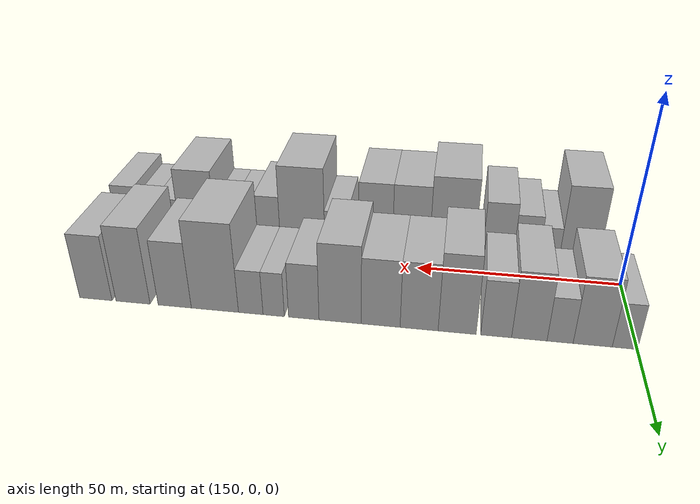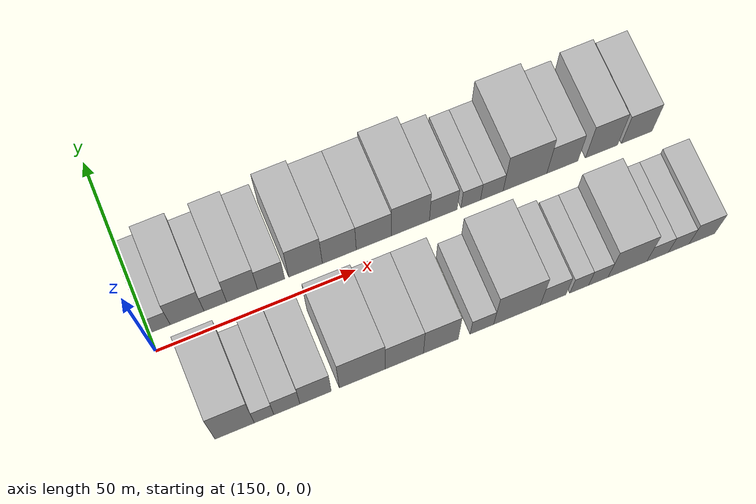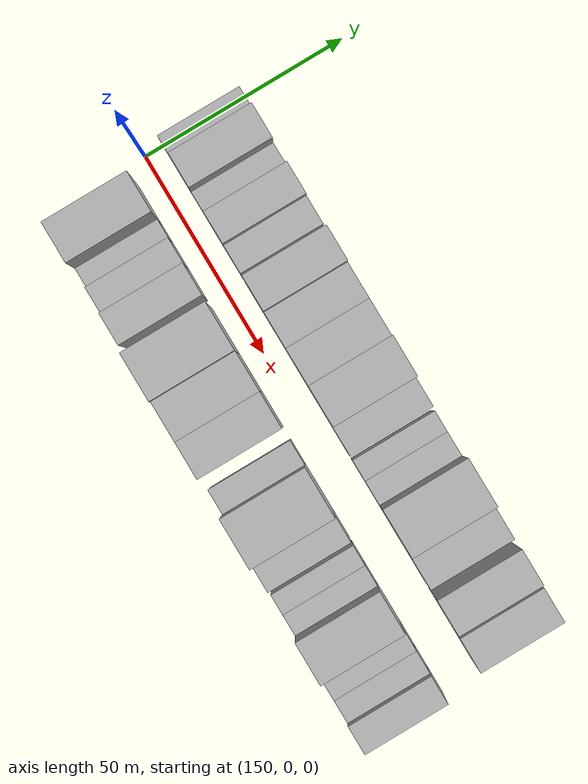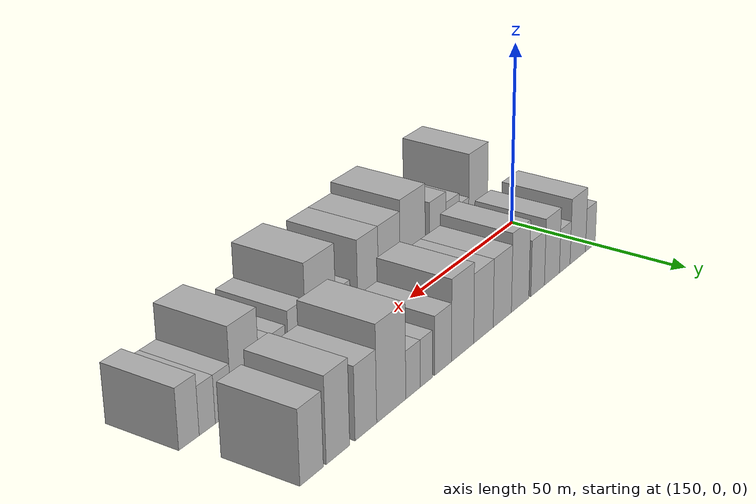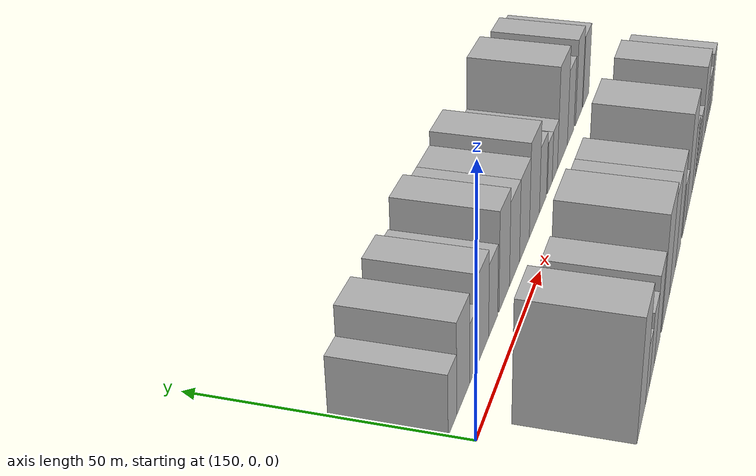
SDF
<sdf version="1.6">
 <world name="default">
  <model name="building_16">
   <static>1</static>
   <pose>152.5969 14.5000 0 0.000000 0.000000 1.570796</pose>
   <link name="link">
    <pose>0 0 6.00 0 0 0</pose>
    <collision name="collision"><geometry><box><size>20.0000 5.3992 12.0000</size></box></geometry></collision>
    <visual name="visual">
     <cast_shadows>0</cast_shadows>
     <geometry><box><size>20.0000 5.3992 12.0000</size></box></geometry>
     <material>
      <script>
       <uri>model://HANNAS_wall/materials/scripts</uri>
       <uri>model://HANNAS_wall/materials/textures</uri>
       <name>vrc/HANNAS_wall</name>
      </script>
     </material>
    </visual>
   </link>
  </model>
  <model name="building_17">
   <static>1</static>
   <pose>159.4953 14.5000 0 0.000000 0.000000 1.570796</pose>
   <link name="link">
    <pose>0 0 9.00 0 0 0</pose>
    <collision name="collision"><geometry><box><size>20.0000 8.3975 18.0000</size></box></geometry></collision>
    <visual name="visual">
     <cast_shadows>0</cast_shadows>
     <geometry><box><size>20.0000 8.3975 18.0000</size></box></geometry>
     <material>
      <script>
       <uri>model://HANNAS_wall/materials/scripts</uri>
       <uri>model://HANNAS_wall/materials/textures</uri>
       <name>vrc/HANNAS_wall</name>
      </script>
     </material>
    </visual>
   </link>
  </model>
  <model name="building_18">
   <static>1</static>
   <pose>166.5241 14.5000 0 0.000000 0.000000 1.570796</pose>
   <link name="link">
    <pose>0 0 6.00 0 0 0</pose>
    <collision name="collision"><geometry><box><size>20.0000 5.6603 12.0000</size></box></geometry></collision>
    <visual name="visual">
     <cast_shadows>0</cast_shadows>
     <geometry><box><size>20.0000 5.6603 12.0000</size></box></geometry>
     <material>
      <script>
       <uri>model://HANNAS_wall/materials/scripts</uri>
       <uri>model://HANNAS_wall/materials/textures</uri>
       <name>vrc/HANNAS_wall</name>
      </script>
     </material>
    </visual>
   </link>
  </model>
  <model name="building_19">
   <static>1</static>
   <pose>173.2280 14.5000 0 0.000000 0.000000 1.570796</pose>
   <link name="link">
    <pose>0 0 9.00 0 0 0</pose>
    <collision name="collision"><geometry><box><size>20.0000 7.7474 18.0000</size></box></geometry></collision>
    <visual name="visual">
     <cast_shadows>0</cast_shadows>
     <geometry><box><size>20.0000 7.7474 18.0000</size></box></geometry>
     <material>
      <script>
       <uri>model://HANNAS_wall/materials/scripts</uri>
       <uri>model://HANNAS_wall/materials/textures</uri>
       <name>vrc/HANNAS_wall</name>
      </script>
     </material>
    </visual>
   </link>
  </model>
  <model name="building_20">
   <static>1</static>
   <pose>180.5240 14.5000 0 0.000000 0.000000 1.570796</pose>
   <link name="link">
    <pose>0 0 7.50 0 0 0</pose>
    <collision name="collision"><geometry><box><size>20.0000 6.8446 15.0000</size></box></geometry></collision>
    <visual name="visual">
     <cast_shadows>0</cast_shadows>
     <geometry><box><size>20.0000 6.8446 15.0000</size></box></geometry>
     <material>
      <script>
       <uri>model://HANNAS_wall/materials/scripts</uri>
       <uri>model://HANNAS_wall/materials/textures</uri>
       <name>vrc/HANNAS_wall</name>
      </script>
     </material>
    </visual>
   </link>
  </model>
  <model name="building_21">
   <static>1</static>
   <pose>189.2113 14.5000 0 0.000000 0.000000 1.570796</pose>
   <link name="link">
    <pose>0 0 10.50 0 0 0</pose>
    <collision name="collision"><geometry><box><size>20.0000 8.5298 21.0000</size></box></geometry></collision>
    <visual name="visual">
     <cast_shadows>0</cast_shadows>
     <geometry><box><size>20.0000 8.5298 21.0000</size></box></geometry>
     <material>
      <script>
       <uri>model://HANNAS_wall/materials/scripts</uri>
       <uri>model://HANNAS_wall/materials/textures</uri>
       <name>vrc/HANNAS_wall</name>
      </script>
     </material>
    </visual>
   </link>
  </model>
  <model name="building_22">
   <static>1</static>
   <pose>197.7850 14.5000 0 0.000000 0.000000 1.570796</pose>
   <link name="link">
    <pose>0 0 9.00 0 0 0</pose>
    <collision name="collision"><geometry><box><size>20.0000 8.6177 18.0000</size></box></geometry></collision>
    <visual name="visual">
     <cast_shadows>0</cast_shadows>
     <geometry><box><size>20.0000 8.6177 18.0000</size></box></geometry>
     <material>
      <script>
       <uri>model://HANNAS_wall/materials/scripts</uri>
       <uri>model://HANNAS_wall/materials/textures</uri>
       <name>vrc/HANNAS_wall</name>
      </script>
     </material>
    </visual>
   </link>
  </model>
  <model name="building_23">
   <static>1</static>
   <pose>206.5745 14.5000 0 0.000000 0.000000 1.570796</pose>
   <link name="link">
    <pose>0 0 9.00 0 0 0</pose>
    <collision name="collision"><geometry><box><size>20.0000 8.9612 18.0000</size></box></geometry></collision>
    <visual name="visual">
     <cast_shadows>0</cast_shadows>
     <geometry><box><size>20.0000 8.9612 18.0000</size></box></geometry>
     <material>
      <script>
       <uri>model://HANNAS_wall/materials/scripts</uri>
       <uri>model://HANNAS_wall/materials/textures</uri>
       <name>vrc/HANNAS_wall</name>
      </script>
     </material>
    </visual>
   </link>
  </model>
  <model name="building_24">
   <static>1</static>
   <pose>215.9499 14.5000 0 0.000000 0.000000 1.570796</pose>
   <link name="link">
    <pose>0 0 10.50 0 0 0</pose>
    <collision name="collision"><geometry><box><size>20.0000 9.7897 21.0000</size></box></geometry></collision>
    <visual name="visual">
     <cast_shadows>0</cast_shadows>
     <geometry><box><size>20.0000 9.7897 21.0000</size></box></geometry>
     <material>
      <script>
       <uri>model://HANNAS_wall/materials/scripts</uri>
       <uri>model://HANNAS_wall/materials/textures</uri>
       <name>vrc/HANNAS_wall</name>
      </script>
     </material>
    </visual>
   </link>
  </model>
  <model name="building_25">
   <static>1</static>
   <pose>224.4334 14.5000 0 0.000000 0.000000 1.570796</pose>
   <link name="link">
    <pose>0 0 7.50 0 0 0</pose>
    <collision name="collision"><geometry><box><size>20.0000 7.1772 15.0000</size></box></geometry></collision>
    <visual name="visual">
     <cast_shadows>0</cast_shadows>
     <geometry><box><size>20.0000 7.1772 15.0000</size></box></geometry>
     <material>
      <script>
       <uri>model://HANNAS_wall/materials/scripts</uri>
       <uri>model://HANNAS_wall/materials/textures</uri>
       <name>vrc/HANNAS_wall</name>
      </script>
     </material>
    </visual>
   </link>
  </model>
  <model name="building_26">
   <static>1</static>
   <pose>231.5521 14.5000 0 0.000000 0.000000 1.570796</pose>
   <link name="link">
    <pose>0 0 6.00 0 0 0</pose>
    <collision name="collision"><geometry><box><size>20.0000 5.0602 12.0000</size></box></geometry></collision>
    <visual name="visual">
     <cast_shadows>0</cast_shadows>
     <geometry><box><size>20.0000 5.0602 12.0000</size></box></geometry>
     <material>
      <script>
       <uri>model://HANNAS_wall/materials/scripts</uri>
       <uri>model://HANNAS_wall/materials/textures</uri>
       <name>vrc/HANNAS_wall</name>
      </script>
     </material>
    </visual>
   </link>
  </model>
  <model name="building_27">
   <static>1</static>
   <pose>237.0259 14.5000 0 0.000000 0.000000 1.570796</pose>
   <link name="link">
    <pose>0 0 6.00 0 0 0</pose>
    <collision name="collision"><geometry><box><size>20.0000 5.8875 12.0000</size></box></geometry></collision>
    <visual name="visual">
     <cast_shadows>0</cast_shadows>
     <geometry><box><size>20.0000 5.8875 12.0000</size></box></geometry>
     <material>
      <script>
       <uri>model://HANNAS_wall/materials/scripts</uri>
       <uri>model://HANNAS_wall/materials/textures</uri>
       <name>vrc/HANNAS_wall</name>
      </script>
     </material>
    </visual>
   </link>
  </model>
  <model name="building_28">
   <static>1</static>
   <pose>245.6938 14.5000 0 0.000000 0.000000 1.570796</pose>
   <link name="link">
    <pose>0 0 12.00 0 0 0</pose>
    <collision name="collision"><geometry><box><size>20.0000 11.4482 24.0000</size></box></geometry></collision>
    <visual name="visual">
     <cast_shadows>0</cast_shadows>
     <geometry><box><size>20.0000 11.4482 24.0000</size></box></geometry>
     <material>
      <script>
       <uri>model://HANNAS_wall/materials/scripts</uri>
       <uri>model://HANNAS_wall/materials/textures</uri>
       <name>vrc/HANNAS_wall</name>
      </script>
     </material>
    </visual>
   </link>
  </model>
  <model name="building_29">
   <static>1</static>
   <pose>255.5034 14.5000 0 0.000000 0.000000 1.570796</pose>
   <link name="link">
    <pose>0 0 9.00 0 0 0</pose>
    <collision name="collision"><geometry><box><size>20.0000 8.1710 18.0000</size></box></geometry></collision>
    <visual name="visual">
     <cast_shadows>0</cast_shadows>
     <geometry><box><size>20.0000 8.1710 18.0000</size></box></geometry>
     <material>
      <script>
       <uri>model://HANNAS_wall/materials/scripts</uri>
       <uri>model://HANNAS_wall/materials/textures</uri>
       <name>vrc/HANNAS_wall</name>
      </script>
     </material>
    </visual>
   </link>
  </model>
  <model name="building_30">
   <static>1</static>
   <pose>265.8382 14.5000 0 0.000000 0.000000 1.570796</pose>
   <link name="link">
    <pose>0 0 10.50 0 0 0</pose>
    <collision name="collision"><geometry><box><size>20.0000 8.4984 21.0000</size></box></geometry></collision>
    <visual name="visual">
     <cast_shadows>0</cast_shadows>
     <geometry><box><size>20.0000 8.4984 21.0000</size></box></geometry>
     <material>
      <script>
       <uri>model://HANNAS_wall/materials/scripts</uri>
       <uri>model://HANNAS_wall/materials/textures</uri>
       <name>vrc/HANNAS_wall</name>
      </script>
     </material>
    </visual>
   </link>
  </model>
  <model name="building_31">
   <static>1</static>
   <pose>275.1701 14.5000 0 0.000000 0.000000 1.570796</pose>
   <link name="link">
    <pose>0 0 9.00 0 0 0</pose>
    <collision name="collision"><geometry><box><size>20.0000 8.1655 18.0000</size></box></geometry></collision>
    <visual name="visual">
     <cast_shadows>0</cast_shadows>
     <geometry><box><size>20.0000 8.1655 18.0000</size></box></geometry>
     <material>
      <script>
       <uri>model://HANNAS_wall/materials/scripts</uri>
       <uri>model://HANNAS_wall/materials/textures</uri>
       <name>vrc/HANNAS_wall</name>
      </script>
     </material>
    </visual>
   </link>
  </model>
  <model name="building_47">
   <static>1</static>
   <pose>160.1193 -14.5000 0 0.000000 0.000000 1.570796</pose>
   <link name="link">
    <pose>0 0 12.00 0 0 0</pose>
    <collision name="collision"><geometry><box><size>20.0000 9.6139 24.0000</size></box></geometry></collision>
    <visual name="visual">
     <cast_shadows>0</cast_shadows>
     <geometry><box><size>20.0000 9.6139 24.0000</size></box></geometry>
     <material>
      <script>
       <uri>model://HANNAS_wall/materials/scripts</uri>
       <uri>model://HANNAS_wall/materials/textures</uri>
       <name>vrc/HANNAS_wall</name>
      </script>
     </material>
    </visual>
   </link>
  </model>
  <model name="building_48">
   <static>1</static>
   <pose>167.3458 -14.5000 0 0.000000 0.000000 1.570796</pose>
   <link name="link">
    <pose>0 0 6.00 0 0 0</pose>
    <collision name="collision"><geometry><box><size>20.0000 4.8391 12.0000</size></box></geometry></collision>
    <visual name="visual">
     <cast_shadows>0</cast_shadows>
     <geometry><box><size>20.0000 4.8391 12.0000</size></box></geometry>
     <material>
      <script>
       <uri>model://HANNAS_wall/materials/scripts</uri>
       <uri>model://HANNAS_wall/materials/textures</uri>
       <name>vrc/HANNAS_wall</name>
      </script>
     </material>
    </visual>
   </link>
  </model>
  <model name="building_49">
   <static>1</static>
   <pose>172.9753 -14.5000 0 0.000000 0.000000 1.570796</pose>
   <link name="link">
    <pose>0 0 7.50 0 0 0</pose>
    <collision name="collision"><geometry><box><size>20.0000 6.4200 15.0000</size></box></geometry></collision>
    <visual name="visual">
     <cast_shadows>0</cast_shadows>
     <geometry><box><size>20.0000 6.4200 15.0000</size></box></geometry>
     <material>
      <script>
       <uri>model://HANNAS_wall/materials/scripts</uri>
       <uri>model://HANNAS_wall/materials/textures</uri>
       <name>vrc/HANNAS_wall</name>
      </script>
     </material>
    </visual>
   </link>
  </model>
  <model name="building_50">
   <static>1</static>
   <pose>180.0564 -14.5000 0 0.000000 0.000000 1.570796</pose>
   <link name="link">
    <pose>0 0 9.00 0 0 0</pose>
    <collision name="collision"><geometry><box><size>20.0000 7.7422 18.0000</size></box></geometry></collision>
    <visual name="visual">
     <cast_shadows>0</cast_shadows>
     <geometry><box><size>20.0000 7.7422 18.0000</size></box></geometry>
     <material>
      <script>
       <uri>model://HANNAS_wall/materials/scripts</uri>
       <uri>model://HANNAS_wall/materials/textures</uri>
       <name>vrc/HANNAS_wall</name>
      </script>
     </material>
    </visual>
   </link>
  </model>
  <model name="building_51">
   <static>1</static>
   <pose>191.6581 -14.5000 0 0.000000 0.000000 1.570796</pose>
   <link name="link">
    <pose>0 0 12.00 0 0 0</pose>
    <collision name="collision"><geometry><box><size>20.0000 11.4613 24.0000</size></box></geometry></collision>
    <visual name="visual">
     <cast_shadows>0</cast_shadows>
     <geometry><box><size>20.0000 11.4613 24.0000</size></box></geometry>
     <material>
      <script>
       <uri>model://HANNAS_wall/materials/scripts</uri>
       <uri>model://HANNAS_wall/materials/textures</uri>
       <name>vrc/HANNAS_wall</name>
      </script>
     </material>
    </visual>
   </link>
  </model>
  <model name="building_52">
   <static>1</static>
   <pose>202.1653 -14.5000 0 0.000000 0.000000 1.570796</pose>
   <link name="link">
    <pose>0 0 10.50 0 0 0</pose>
    <collision name="collision"><geometry><box><size>20.0000 9.5530 21.0000</size></box></geometry></collision>
    <visual name="visual">
     <cast_shadows>0</cast_shadows>
     <geometry><box><size>20.0000 9.5530 21.0000</size></box></geometry>
     <material>
      <script>
       <uri>model://HANNAS_wall/materials/scripts</uri>
       <uri>model://HANNAS_wall/materials/textures</uri>
       <name>vrc/HANNAS_wall</name>
      </script>
     </material>
    </visual>
   </link>
  </model>
  <model name="building_53">
   <static>1</static>
   <pose>211.3475 -14.5000 0 0.000000 0.000000 1.570796</pose>
   <link name="link">
    <pose>0 0 10.50 0 0 0</pose>
    <collision name="collision"><geometry><box><size>20.0000 8.8114 21.0000</size></box></geometry></collision>
    <visual name="visual">
     <cast_shadows>0</cast_shadows>
     <geometry><box><size>20.0000 8.8114 21.0000</size></box></geometry>
     <material>
      <script>
       <uri>model://HANNAS_wall/materials/scripts</uri>
       <uri>model://HANNAS_wall/materials/textures</uri>
       <name>vrc/HANNAS_wall</name>
      </script>
     </material>
    </visual>
   </link>
  </model>
  <model name="building_54">
   <static>1</static>
   <pose>221.7446 -14.5000 0 0.000000 0.000000 1.570796</pose>
   <link name="link">
    <pose>0 0 6.00 0 0 0</pose>
    <collision name="collision"><geometry><box><size>20.0000 5.9828 12.0000</size></box></geometry></collision>
    <visual name="visual">
     <cast_shadows>0</cast_shadows>
     <geometry><box><size>20.0000 5.9828 12.0000</size></box></geometry>
     <material>
      <script>
       <uri>model://HANNAS_wall/materials/scripts</uri>
       <uri>model://HANNAS_wall/materials/textures</uri>
       <name>vrc/HANNAS_wall</name>
      </script>
     </material>
    </visual>
   </link>
  </model>
  <model name="building_55">
   <static>1</static>
   <pose>230.6749 -14.5000 0 0.000000 0.000000 1.570796</pose>
   <link name="link">
    <pose>0 0 12.00 0 0 0</pose>
    <collision name="collision"><geometry><box><size>20.0000 11.8777 24.0000</size></box></geometry></collision>
    <visual name="visual">
     <cast_shadows>0</cast_shadows>
     <geometry><box><size>20.0000 11.8777 24.0000</size></box></geometry>
     <material>
      <script>
       <uri>model://HANNAS_wall/materials/scripts</uri>
       <uri>model://HANNAS_wall/materials/textures</uri>
       <name>vrc/HANNAS_wall</name>
      </script>
     </material>
    </visual>
   </link>
  </model>
  <model name="building_56">
   <static>1</static>
   <pose>239.9176 -14.5000 0 0.000000 0.000000 1.570796</pose>
   <link name="link">
    <pose>0 0 7.50 0 0 0</pose>
    <collision name="collision"><geometry><box><size>20.0000 6.6077 15.0000</size></box></geometry></collision>
    <visual name="visual">
     <cast_shadows>0</cast_shadows>
     <geometry><box><size>20.0000 6.6077 15.0000</size></box></geometry>
     <material>
      <script>
       <uri>model://HANNAS_wall/materials/scripts</uri>
       <uri>model://HANNAS_wall/materials/textures</uri>
       <name>vrc/HANNAS_wall</name>
      </script>
     </material>
    </visual>
   </link>
  </model>
  <model name="building_57">
   <static>1</static>
   <pose>246.6359 -14.5000 0 0.000000 0.000000 1.570796</pose>
   <link name="link">
    <pose>0 0 6.00 0 0 0</pose>
    <collision name="collision"><geometry><box><size>20.0000 4.8288 12.0000</size></box></geometry></collision>
    <visual name="visual">
     <cast_shadows>0</cast_shadows>
     <geometry><box><size>20.0000 4.8288 12.0000</size></box></geometry>
     <material>
      <script>
       <uri>model://HANNAS_wall/materials/scripts</uri>
       <uri>model://HANNAS_wall/materials/textures</uri>
       <name>vrc/HANNAS_wall</name>
      </script>
     </material>
    </visual>
   </link>
  </model>
  <model name="building_58">
   <static>1</static>
   <pose>251.5551 -14.5000 0 0.000000 0.000000 1.570796</pose>
   <link name="link">
    <pose>0 0 6.00 0 0 0</pose>
    <collision name="collision"><geometry><box><size>20.0000 5.0096 12.0000</size></box></geometry></collision>
    <visual name="visual">
     <cast_shadows>0</cast_shadows>
     <geometry><box><size>20.0000 5.0096 12.0000</size></box></geometry>
     <material>
      <script>
       <uri>model://HANNAS_wall/materials/scripts</uri>
       <uri>model://HANNAS_wall/materials/textures</uri>
       <name>vrc/HANNAS_wall</name>
      </script>
     </material>
    </visual>
   </link>
  </model>
  <model name="building_59">
   <static>1</static>
   <pose>259.1018 -14.5000 0 0.000000 0.000000 1.570796</pose>
   <link name="link">
    <pose>0 0 10.50 0 0 0</pose>
    <collision name="collision"><geometry><box><size>20.0000 10.0839 21.0000</size></box></geometry></collision>
    <visual name="visual">
     <cast_shadows>0</cast_shadows>
     <geometry><box><size>20.0000 10.0839 21.0000</size></box></geometry>
     <material>
      <script>
       <uri>model://HANNAS_wall/materials/scripts</uri>
       <uri>model://HANNAS_wall/materials/textures</uri>
       <name>vrc/HANNAS_wall</name>
      </script>
     </material>
    </visual>
   </link>
  </model>
  <model name="building_60">
   <static>1</static>
   <pose>266.9435 -14.5000 0 0.000000 0.000000 1.570796</pose>
   <link name="link">
    <pose>0 0 6.00 0 0 0</pose>
    <collision name="collision"><geometry><box><size>20.0000 5.5995 12.0000</size></box></geometry></collision>
    <visual name="visual">
     <cast_shadows>0</cast_shadows>
     <geometry><box><size>20.0000 5.5995 12.0000</size></box></geometry>
     <material>
      <script>
       <uri>model://HANNAS_wall/materials/scripts</uri>
       <uri>model://HANNAS_wall/materials/textures</uri>
       <name>vrc/HANNAS_wall</name>
      </script>
     </material>
    </visual>
   </link>
  </model>
  <model name="building_61">
   <static>1</static>
   <pose>272.4542 -14.5000 0 0.000000 0.000000 1.570796</pose>
   <link name="link">
    <pose>0 0 6.00 0 0 0</pose>
    <collision name="collision"><geometry><box><size>20.0000 5.4219 12.0000</size></box></geometry></collision>
    <visual name="visual">
     <cast_shadows>0</cast_shadows>
     <geometry><box><size>20.0000 5.4219 12.0000</size></box></geometry>
     <material>
      <script>
       <uri>model://HANNAS_wall/materials/scripts</uri>
       <uri>model://HANNAS_wall/materials/textures</uri>
       <name>vrc/HANNAS_wall</name>
      </script>
     </material>
    </visual>
   </link>
  </model>
  <model name="building_62">
   <static>1</static>
   <pose>278.5400 -14.5000 0 0.000000 0.000000 1.570796</pose>
   <link name="link">
    <pose>0 0 7.50 0 0 0</pose>
    <collision name="collision"><geometry><box><size>20.0000 6.7498 15.0000</size></box></geometry></collision>
    <visual name="visual">
     <cast_shadows>0</cast_shadows>
     <geometry><box><size>20.0000 6.7498 15.0000</size></box></geometry>
     <material>
      <script>
       <uri>model://HANNAS_wall/materials/scripts</uri>
       <uri>model://HANNAS_wall/materials/textures</uri>
       <name>vrc/HANNAS_wall</name>
      </script>
     </material>
    </visual>
   </link>
  </model>
 </world>
</sdf>
